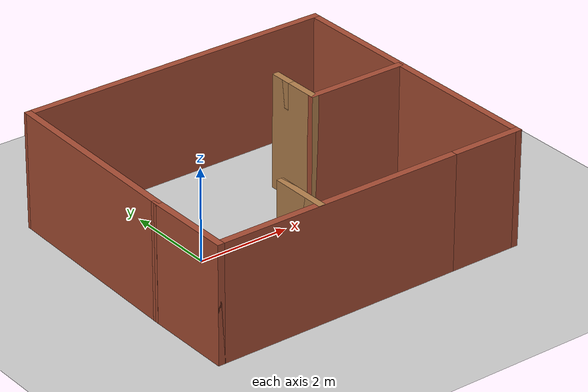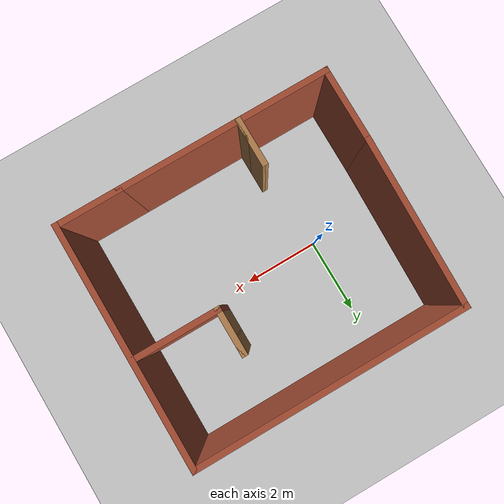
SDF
<sdf version="1.7">
 <world name="default">
  <light name="sun" type="directional">
   <pose>0 0 10 0 -0 0</pose>
   <diffuse>0.8 0.8 0.8 1</diffuse>
   <specular>0.2 0.2 0.2 1</specular>
   <attenuation>
    <range>1000</range>
    <constant>0.9</constant>
    <linear>0.01</linear>
    <quadratic>0.001</quadratic>
   </attenuation>
   <direction>-0.5 0.1 -0.9</direction>
   <spot><inner_angle>0</inner_angle><outer_angle>0</outer_angle><falloff>0</falloff></spot>
  </light>
  <model name="ground_plane">
   <static>1</static>
   <link name="link">
    <collision name="collision">
     <geometry><plane><normal>0 0 1</normal><size>100 100</size></plane></geometry>
     <surface>
      <contact><collide_bitmask>65535</collide_bitmask></contact>
      <friction><ode><mu>100</mu><mu2>50</mu2></ode></friction>
     </surface>
    </collision>
    <visual name="visual">
     <cast_shadows>0</cast_shadows>
     <geometry><plane><normal>0 0 1</normal><size>100 100</size></plane></geometry>
     <material>
      <script><uri>file://media/materials/scripts/gazebo.material</uri><name>Gazebo/Grey</name></script>
     </material>
    </visual>
   </link>
  </model>
  <gravity>0 0 -9.8</gravity>
  <magnetic_field>6e-06 2.3e-05 -4.2e-05</magnetic_field>
  <atmosphere type="adiabatic"/>
  <physics type="ode">
   <max_step_size>0.001</max_step_size>
   <real_time_factor>1</real_time_factor>
   <real_time_update_rate>1000</real_time_update_rate>
  </physics>
  <scene><ambient>0.4 0.4 0.4 1</ambient><background>0.7 0.7 0.7 1</background><shadows>1</shadows></scene>
  <audio><device>default</device></audio>
  <spherical_coordinates>
   <surface_model>EARTH_WGS84</surface_model>
   <latitude_deg>0</latitude_deg>
   <longitude_deg>0</longitude_deg>
   <elevation>0</elevation>
   <heading_deg>0</heading_deg>
  </spherical_coordinates>
  <model name="dum1">
   <pose>1.57413 -0.059128 0 0 -0 0</pose>
   <link name="Wall_0">
    <collision name="Wall_0_Collision">
     <geometry><box><size>2 0.15 2.5</size></box></geometry>
     <pose>0 0 1.25 0 -0 0</pose>
    </collision>
    <visual name="Wall_0_Visual">
     <pose>0 0 1.25 0 -0 0</pose>
     <geometry><box><size>2 0.15 2.5</size></box></geometry>
     <material>
      <script><uri>file://media/materials/scripts/gazebo.material</uri><name>Gazebo/Bricks</name></script>
      <ambient>1 1 1 1</ambient>
     </material>
     <meta><layer>0</layer></meta>
    </visual>
    <pose>-3.47413 -2.12587 0 0 -0 -1.5708</pose>
   </link>
   <link name="Wall_1">
    <collision name="Wall_1_Collision">
     <geometry><box><size>5.5 0.15 2.5</size></box></geometry>
     <pose>0 0 1.25 0 -0 0</pose>
    </collision>
    <visual name="Wall_1_Visual">
     <pose>0 0 1.25 0 -0 0</pose>
     <geometry><box><size>5.5 0.15 2.5</size></box></geometry>
     <material>
      <script><uri>file://media/materials/scripts/gazebo.material</uri><name>Gazebo/Bricks</name></script>
      <ambient>1 1 1 1</ambient>
     </material>
     <meta><layer>0</layer></meta>
    </visual>
    <pose>-0.799128 -3.05087 0 0 -0 0</pose>
   </link>
   <link name="Wall_13">
    <collision name="Wall_13_Collision">
     <geometry><box><size>1.75 0.15 2.5</size></box></geometry>
     <pose>0 0 1.25 0 -0 0</pose>
    </collision>
    <visual name="Wall_13_Visual">
     <pose>0 0 1.25 0 -0 0</pose>
     <geometry><box><size>1.75 0.15 2.5</size></box></geometry>
     <material>
      <script><uri>file://media/materials/scripts/gazebo.material</uri><name>Gazebo/Bricks</name></script>
      <ambient>1 1 1 1</ambient>
     </material>
     <meta><layer>0</layer></meta>
    </visual>
    <pose>2.67587 -3.05087 0 0 -0 0</pose>
   </link>
   <link name="Wall_14">
    <collision name="Wall_14_Collision">
     <geometry><box><size>6.25 0.15 2.5</size></box></geometry>
     <pose>0 0 1.25 0 -0 0</pose>
    </collision>
    <visual name="Wall_14_Visual">
     <pose>0 0 1.25 0 -0 0</pose>
     <geometry><box><size>6.25 0.15 2.5</size></box></geometry>
     <material>
      <script><uri>file://media/materials/scripts/gazebo.material</uri><name>Gazebo/Bricks</name></script>
      <ambient>1 1 1 1</ambient>
     </material>
     <meta><layer>0</layer></meta>
    </visual>
    <pose>3.47587 -0.000872 0 0 -0 1.5708</pose>
   </link>
   <link name="Wall_15">
    <collision name="Wall_15_Collision">
     <geometry><box><size>7 0.15 2.5</size></box></geometry>
     <pose>0 0 1.25 0 -0 0</pose>
    </collision>
    <visual name="Wall_15_Visual">
     <pose>0 0 1.25 0 -0 0</pose>
     <geometry><box><size>7 0.15 2.5</size></box></geometry>
     <material>
      <script><uri>file://media/materials/scripts/gazebo.material</uri><name>Gazebo/Bricks</name></script>
      <ambient>1 1 1 1</ambient>
     </material>
     <meta><layer>0</layer></meta>
    </visual>
    <pose>0.050872 3.04913 0 0 -0 3.14159</pose>
   </link>
   <link name="Wall_16">
    <collision name="Wall_16_Collision">
     <geometry><box><size>4.40118 0.15 2.5</size></box></geometry>
     <pose>0 0 1.25 0 -0 0</pose>
    </collision>
    <visual name="Wall_16_Visual">
     <pose>0 0 1.25 0 -0 0</pose>
     <geometry><box><size>4.40118 0.15 2.5</size></box></geometry>
     <material>
      <script><uri>file://media/materials/scripts/gazebo.material</uri><name>Gazebo/Bricks</name></script>
      <ambient>1 1 1 1</ambient>
     </material>
     <meta><layer>0</layer></meta>
    </visual>
    <pose>-3.42413 0.924128 0 0 -0 -1.59432</pose>
   </link>
   <link name="Wall_18">
    <collision name="Wall_18_Collision">
     <geometry><box><size>2.25 0.15 2.5</size></box></geometry>
     <pose>0 0 1.25 0 -0 0</pose>
    </collision>
    <visual name="Wall_18_Visual">
     <pose>0 0 1.25 0 -0 0</pose>
     <geometry><box><size>2.25 0.15 2.5</size></box></geometry>
     <material>
      <script><uri>file://media/materials/scripts/gazebo.material</uri><name>Gazebo/Bricks</name></script>
      <ambient>1 1 1 1</ambient>
     </material>
     <meta><layer>0</layer></meta>
    </visual>
    <pose>2.37015 0.355545 0 0 -0 3.14159</pose>
   </link>
   <link name="Wall_19">
    <collision name="Wall_19_Collision">
     <geometry><box><size>1.25 0.15 2.5</size></box></geometry>
     <pose>0 0 1.25 0 -0 0</pose>
    </collision>
    <visual name="Wall_19_Visual">
     <pose>0 0 1.25 0 -0 0</pose>
     <geometry><box><size>1.25 0.15 2.5</size></box></geometry>
     <material>
      <script><uri>file://media/materials/scripts/gazebo.material</uri><name>Gazebo/Wood</name></script>
      <ambient>1 1 1 1</ambient>
     </material>
     <meta><layer>0</layer></meta>
    </visual>
    <pose>1.32015 0.905545 0 0 -0 1.5708</pose>
   </link>
   <link name="Wall_20">
    <collision name="Wall_20_Collision">
     <geometry><box><size>0.5 0.15 2.5</size></box></geometry>
     <pose>0 0 1.25 0 -0 0</pose>
    </collision>
    <visual name="Wall_20_Visual">
     <pose>0 0 1.25 0 -0 0</pose>
     <geometry><box><size>0.5 0.15 2.5</size></box></geometry>
     <material>
      <script><uri>file://media/materials/scripts/gazebo.material</uri><name>Gazebo/Wood</name></script>
      <ambient>1 1 1 1</ambient>
     </material>
     <meta><layer>0</layer></meta>
    </visual>
    <pose>1.32015 1.28055 0 0 -0 -1.5708</pose>
   </link>
   <link name="Wall_8">
    <collision name="Wall_8_Collision">
     <geometry><box><size>1.25 0.15 2.5</size></box></geometry>
     <pose>0 0 1.25 0 -0 0</pose>
    </collision>
    <visual name="Wall_8_Visual">
     <pose>0 0 1.25 0 -0 0</pose>
     <geometry><box><size>1.25 0.15 2.5</size></box></geometry>
     <material>
      <script><uri>file://media/materials/scripts/gazebo.material</uri><name>Gazebo/Wood</name></script>
      <ambient>1 1 1 1</ambient>
     </material>
     <meta><layer>0</layer></meta>
    </visual>
    <pose>-1.19898 -2.48997 0 0 -0 1.5708</pose>
   </link>
   <link name="Wall_9">
    <collision name="Wall_9_Collision">
     <geometry><box><size>1.25 0.15 2.5</size></box></geometry>
     <pose>0 0 1.25 0 -0 0</pose>
    </collision>
    <visual name="Wall_9_Visual">
     <pose>0 0 1.25 0 -0 0</pose>
     <geometry><box><size>1.25 0.15 2.5</size></box></geometry>
     <material>
      <script><uri>file://media/materials/scripts/gazebo.material</uri><name>Gazebo/Wood</name></script>
      <ambient>1 1 1 1</ambient>
     </material>
     <meta><layer>0</layer></meta>
    </visual>
    <pose>-1.19898 -2.48997 0 0 -0 -1.5708</pose>
   </link>
   <static>1</static>
  </model>
 </world>
</sdf>
